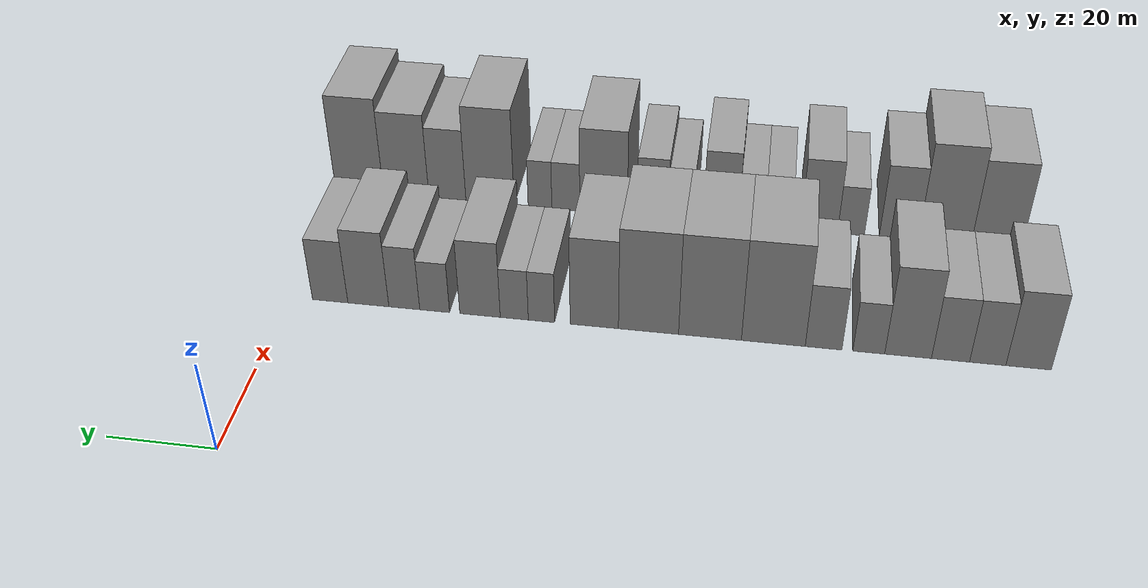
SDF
<sdf version="1.6">
 <world name="default">
  <model name="building_19">
   <static>1</static>
   <pose>50.0000 -140.0425 0 0.000000 0.000000 0.000000</pose>
   <link name="link">
    <pose>0 0 9.00 0 0 0</pose>
    <collision name="collision"><geometry><box><size>20.0000 8.1334 18.0000</size></box></geometry></collision>
    <visual name="visual">
     <cast_shadows>0</cast_shadows>
     <geometry><box><size>20.0000 8.1334 18.0000</size></box></geometry>
     <material>
      <script>
       <uri>model://grey_wall/materials/scripts</uri>
       <uri>model://grey_wall/materials/textures</uri>
       <name>vrc/grey_wall</name>
      </script>
     </material>
    </visual>
   </link>
  </model>
  <model name="building_20">
   <static>1</static>
   <pose>50.0000 -132.7113 0 0.000000 0.000000 0.000000</pose>
   <link name="link">
    <pose>0 0 7.50 0 0 0</pose>
    <collision name="collision"><geometry><box><size>20.0000 6.5290 15.0000</size></box></geometry></collision>
    <visual name="visual">
     <cast_shadows>0</cast_shadows>
     <geometry><box><size>20.0000 6.5290 15.0000</size></box></geometry>
     <material>
      <script>
       <uri>model://grey_wall/materials/scripts</uri>
       <uri>model://grey_wall/materials/textures</uri>
       <name>vrc/grey_wall</name>
      </script>
     </material>
    </visual>
   </link>
  </model>
  <model name="building_21">
   <static>1</static>
   <pose>50.0000 -125.9997 0 0.000000 0.000000 0.000000</pose>
   <link name="link">
    <pose>0 0 7.50 0 0 0</pose>
    <collision name="collision"><geometry><box><size>20.0000 6.8943 15.0000</size></box></geometry></collision>
    <visual name="visual">
     <cast_shadows>0</cast_shadows>
     <geometry><box><size>20.0000 6.8943 15.0000</size></box></geometry>
     <material>
      <script>
       <uri>model://grey_wall/materials/scripts</uri>
       <uri>model://grey_wall/materials/textures</uri>
       <name>vrc/grey_wall</name>
      </script>
     </material>
    </visual>
   </link>
  </model>
  <model name="building_22">
   <static>1</static>
   <pose>50.0000 -118.2893 0 0.000000 0.000000 0.000000</pose>
   <link name="link">
    <pose>0 0 10.50 0 0 0</pose>
    <collision name="collision"><geometry><box><size>20.0000 8.5265 21.0000</size></box></geometry></collision>
    <visual name="visual">
     <cast_shadows>0</cast_shadows>
     <geometry><box><size>20.0000 8.5265 21.0000</size></box></geometry>
     <material>
      <script>
       <uri>model://grey_wall/materials/scripts</uri>
       <uri>model://grey_wall/materials/textures</uri>
       <name>vrc/grey_wall</name>
      </script>
     </material>
    </visual>
   </link>
  </model>
  <model name="building_23">
   <static>1</static>
   <pose>50.0000 -111.1062 0 0.000000 0.000000 0.000000</pose>
   <link name="link">
    <pose>0 0 6.00 0 0 0</pose>
    <collision name="collision"><geometry><box><size>20.0000 5.8397 12.0000</size></box></geometry></collision>
    <visual name="visual">
     <cast_shadows>0</cast_shadows>
     <geometry><box><size>20.0000 5.8397 12.0000</size></box></geometry>
     <material>
      <script>
       <uri>model://grey_wall/materials/scripts</uri>
       <uri>model://grey_wall/materials/textures</uri>
       <name>vrc/grey_wall</name>
      </script>
     </material>
    </visual>
   </link>
  </model>
  <model name="building_24">
   <static>1</static>
   <pose>50.0000 -102.7975 0 0.000000 0.000000 0.000000</pose>
   <link name="link">
    <pose>0 0 7.50 0 0 0</pose>
    <collision name="collision"><geometry><box><size>20.0000 6.7777 15.0000</size></box></geometry></collision>
    <visual name="visual">
     <cast_shadows>0</cast_shadows>
     <geometry><box><size>20.0000 6.7777 15.0000</size></box></geometry>
     <material>
      <script>
       <uri>model://grey_wall/materials/scripts</uri>
       <uri>model://grey_wall/materials/textures</uri>
       <name>vrc/grey_wall</name>
      </script>
     </material>
    </visual>
   </link>
  </model>
  <model name="building_25">
   <static>1</static>
   <pose>50.0000 -93.4668 0 0.000000 0.000000 0.000000</pose>
   <link name="link">
    <pose>0 0 12.00 0 0 0</pose>
    <collision name="collision"><geometry><box><size>20.0000 11.8837 24.0000</size></box></geometry></collision>
    <visual name="visual">
     <cast_shadows>0</cast_shadows>
     <geometry><box><size>20.0000 11.8837 24.0000</size></box></geometry>
     <material>
      <script>
       <uri>model://grey_wall/materials/scripts</uri>
       <uri>model://grey_wall/materials/textures</uri>
       <name>vrc/grey_wall</name>
      </script>
     </material>
    </visual>
   </link>
  </model>
  <model name="building_26">
   <static>1</static>
   <pose>50.0000 -81.6182 0 0.000000 0.000000 0.000000</pose>
   <link name="link">
    <pose>0 0 12.00 0 0 0</pose>
    <collision name="collision"><geometry><box><size>20.0000 11.8136 24.0000</size></box></geometry></collision>
    <visual name="visual">
     <cast_shadows>0</cast_shadows>
     <geometry><box><size>20.0000 11.8136 24.0000</size></box></geometry>
     <material>
      <script>
       <uri>model://grey_wall/materials/scripts</uri>
       <uri>model://grey_wall/materials/textures</uri>
       <name>vrc/grey_wall</name>
      </script>
     </material>
    </visual>
   </link>
  </model>
  <model name="building_27">
   <static>1</static>
   <pose>50.0000 -70.0026 0 0.000000 0.000000 0.000000</pose>
   <link name="link">
    <pose>0 0 12.00 0 0 0</pose>
    <collision name="collision"><geometry><box><size>20.0000 11.4176 24.0000</size></box></geometry></collision>
    <visual name="visual">
     <cast_shadows>0</cast_shadows>
     <geometry><box><size>20.0000 11.4176 24.0000</size></box></geometry>
     <material>
      <script>
       <uri>model://grey_wall/materials/scripts</uri>
       <uri>model://grey_wall/materials/textures</uri>
       <name>vrc/grey_wall</name>
      </script>
     </material>
    </visual>
   </link>
  </model>
  <model name="building_28">
   <static>1</static>
   <pose>50.0000 -59.6757 0 0.000000 0.000000 0.000000</pose>
   <link name="link">
    <pose>0 0 10.50 0 0 0</pose>
    <collision name="collision"><geometry><box><size>20.0000 9.2361 21.0000</size></box></geometry></collision>
    <visual name="visual">
     <cast_shadows>0</cast_shadows>
     <geometry><box><size>20.0000 9.2361 21.0000</size></box></geometry>
     <material>
      <script>
       <uri>model://grey_wall/materials/scripts</uri>
       <uri>model://grey_wall/materials/textures</uri>
       <name>vrc/grey_wall</name>
      </script>
     </material>
    </visual>
   </link>
  </model>
  <model name="building_29">
   <static>1</static>
   <pose>50.0000 -49.5209 0 0.000000 0.000000 0.000000</pose>
   <link name="link">
    <pose>0 0 6.00 0 0 0</pose>
    <collision name="collision"><geometry><box><size>20.0000 5.0735 12.0000</size></box></geometry></collision>
    <visual name="visual">
     <cast_shadows>0</cast_shadows>
     <geometry><box><size>20.0000 5.0735 12.0000</size></box></geometry>
     <material>
      <script>
       <uri>model://grey_wall/materials/scripts</uri>
       <uri>model://grey_wall/materials/textures</uri>
       <name>vrc/grey_wall</name>
      </script>
     </material>
    </visual>
   </link>
  </model>
  <model name="building_30">
   <static>1</static>
   <pose>50.0000 -44.2629 0 0.000000 0.000000 0.000000</pose>
   <link name="link">
    <pose>0 0 6.00 0 0 0</pose>
    <collision name="collision"><geometry><box><size>20.0000 5.4425 12.0000</size></box></geometry></collision>
    <visual name="visual">
     <cast_shadows>0</cast_shadows>
     <geometry><box><size>20.0000 5.4425 12.0000</size></box></geometry>
     <material>
      <script>
       <uri>model://grey_wall/materials/scripts</uri>
       <uri>model://grey_wall/materials/textures</uri>
       <name>vrc/grey_wall</name>
      </script>
     </material>
    </visual>
   </link>
  </model>
  <model name="building_31">
   <static>1</static>
   <pose>50.0000 -37.5939 0 0.000000 0.000000 0.000000</pose>
   <link name="link">
    <pose>0 0 9.00 0 0 0</pose>
    <collision name="collision"><geometry><box><size>20.0000 7.8954 18.0000</size></box></geometry></collision>
    <visual name="visual">
     <cast_shadows>0</cast_shadows>
     <geometry><box><size>20.0000 7.8954 18.0000</size></box></geometry>
     <material>
      <script>
       <uri>model://grey_wall/materials/scripts</uri>
       <uri>model://grey_wall/materials/textures</uri>
       <name>vrc/grey_wall</name>
      </script>
     </material>
    </visual>
   </link>
  </model>
  <model name="building_32">
   <static>1</static>
   <pose>50.0000 -28.7165 0 0.000000 0.000000 0.000000</pose>
   <link name="link">
    <pose>0 0 6.00 0 0 0</pose>
    <collision name="collision"><geometry><box><size>20.0000 5.8594 12.0000</size></box></geometry></collision>
    <visual name="visual">
     <cast_shadows>0</cast_shadows>
     <geometry><box><size>20.0000 5.8594 12.0000</size></box></geometry>
     <material>
      <script>
       <uri>model://grey_wall/materials/scripts</uri>
       <uri>model://grey_wall/materials/textures</uri>
       <name>vrc/grey_wall</name>
      </script>
     </material>
    </visual>
   </link>
  </model>
  <model name="building_33">
   <static>1</static>
   <pose>50.0000 -22.7319 0 0.000000 0.000000 0.000000</pose>
   <link name="link">
    <pose>0 0 7.50 0 0 0</pose>
    <collision name="collision"><geometry><box><size>20.0000 6.1098 15.0000</size></box></geometry></collision>
    <visual name="visual">
     <cast_shadows>0</cast_shadows>
     <geometry><box><size>20.0000 6.1098 15.0000</size></box></geometry>
     <material>
      <script>
       <uri>model://grey_wall/materials/scripts</uri>
       <uri>model://grey_wall/materials/textures</uri>
       <name>vrc/grey_wall</name>
      </script>
     </material>
    </visual>
   </link>
  </model>
  <model name="building_34">
   <static>1</static>
   <pose>50.0000 -15.6095 0 0.000000 0.000000 0.000000</pose>
   <link name="link">
    <pose>0 0 9.00 0 0 0</pose>
    <collision name="collision"><geometry><box><size>20.0000 8.1350 18.0000</size></box></geometry></collision>
    <visual name="visual">
     <cast_shadows>0</cast_shadows>
     <geometry><box><size>20.0000 8.1350 18.0000</size></box></geometry>
     <material>
      <script>
       <uri>model://grey_wall/materials/scripts</uri>
       <uri>model://grey_wall/materials/textures</uri>
       <name>vrc/grey_wall</name>
      </script>
     </material>
    </visual>
   </link>
  </model>
  <model name="building_35">
   <static>1</static>
   <pose>50.0000 -7.9999 0 0.000000 0.000000 0.000000</pose>
   <link name="link">
    <pose>0 0 7.50 0 0 0</pose>
    <collision name="collision"><geometry><box><size>20.0000 7.0841 15.0000</size></box></geometry></collision>
    <visual name="visual">
     <cast_shadows>0</cast_shadows>
     <geometry><box><size>20.0000 7.0841 15.0000</size></box></geometry>
     <material>
      <script>
       <uri>model://grey_wall/materials/scripts</uri>
       <uri>model://grey_wall/materials/textures</uri>
       <name>vrc/grey_wall</name>
      </script>
     </material>
    </visual>
   </link>
  </model>
  <model name="building_87">
   <static>1</static>
   <pose>85.0000 -137.2307 0 0.000000 0.000000 0.000000</pose>
   <link name="link">
    <pose>0 0 10.50 0 0 0</pose>
    <collision name="collision"><geometry><box><size>20.0000 10.0769 21.0000</size></box></geometry></collision>
    <visual name="visual">
     <cast_shadows>0</cast_shadows>
     <geometry><box><size>20.0000 10.0769 21.0000</size></box></geometry>
     <material>
      <script>
       <uri>model://grey_wall/materials/scripts</uri>
       <uri>model://grey_wall/materials/textures</uri>
       <name>vrc/grey_wall</name>
      </script>
     </material>
    </visual>
   </link>
  </model>
  <model name="building_88">
   <static>1</static>
   <pose>85.0000 -126.8815 0 0.000000 0.000000 0.000000</pose>
   <link name="link">
    <pose>0 0 12.00 0 0 0</pose>
    <collision name="collision"><geometry><box><size>20.0000 10.6216 24.0000</size></box></geometry></collision>
    <visual name="visual">
     <cast_shadows>0</cast_shadows>
     <geometry><box><size>20.0000 10.6216 24.0000</size></box></geometry>
     <material>
      <script>
       <uri>model://grey_wall/materials/scripts</uri>
       <uri>model://grey_wall/materials/textures</uri>
       <name>vrc/grey_wall</name>
      </script>
     </material>
    </visual>
   </link>
  </model>
  <model name="building_89">
   <static>1</static>
   <pose>85.0000 -117.6487 0 0.000000 0.000000 0.000000</pose>
   <link name="link">
    <pose>0 0 9.00 0 0 0</pose>
    <collision name="collision"><geometry><box><size>20.0000 7.8439 18.0000</size></box></geometry></collision>
    <visual name="visual">
     <cast_shadows>0</cast_shadows>
     <geometry><box><size>20.0000 7.8439 18.0000</size></box></geometry>
     <material>
      <script>
       <uri>model://grey_wall/materials/scripts</uri>
       <uri>model://grey_wall/materials/textures</uri>
       <name>vrc/grey_wall</name>
      </script>
     </material>
    </visual>
   </link>
  </model>
  <model name="building_90">
   <static>1</static>
   <pose>85.0000 -107.9802 0 0.000000 0.000000 0.000000</pose>
   <link name="link">
    <pose>0 0 6.00 0 0 0</pose>
    <collision name="collision"><geometry><box><size>20.0000 5.4931 12.0000</size></box></geometry></collision>
    <visual name="visual">
     <cast_shadows>0</cast_shadows>
     <geometry><box><size>20.0000 5.4931 12.0000</size></box></geometry>
     <material>
      <script>
       <uri>model://grey_wall/materials/scripts</uri>
       <uri>model://grey_wall/materials/textures</uri>
       <name>vrc/grey_wall</name>
      </script>
     </material>
    </visual>
   </link>
  </model>
  <model name="building_91">
   <static>1</static>
   <pose>85.0000 -101.4281 0 0.000000 0.000000 0.000000</pose>
   <link name="link">
    <pose>0 0 9.00 0 0 0</pose>
    <collision name="collision"><geometry><box><size>20.0000 7.6112 18.0000</size></box></geometry></collision>
    <visual name="visual">
     <cast_shadows>0</cast_shadows>
     <geometry><box><size>20.0000 7.6112 18.0000</size></box></geometry>
     <material>
      <script>
       <uri>model://grey_wall/materials/scripts</uri>
       <uri>model://grey_wall/materials/textures</uri>
       <name>vrc/grey_wall</name>
      </script>
     </material>
    </visual>
   </link>
  </model>
  <model name="building_92">
   <static>1</static>
   <pose>85.0000 -92.8649 0 0.000000 0.000000 0.000000</pose>
   <link name="link">
    <pose>0 0 6.00 0 0 0</pose>
    <collision name="collision"><geometry><box><size>20.0000 5.5152 12.0000</size></box></geometry></collision>
    <visual name="visual">
     <cast_shadows>0</cast_shadows>
     <geometry><box><size>20.0000 5.5152 12.0000</size></box></geometry>
     <material>
      <script>
       <uri>model://grey_wall/materials/scripts</uri>
       <uri>model://grey_wall/materials/textures</uri>
       <name>vrc/grey_wall</name>
      </script>
     </material>
    </visual>
   </link>
  </model>
  <model name="building_93">
   <static>1</static>
   <pose>85.0000 -87.4809 0 0.000000 0.000000 0.000000</pose>
   <link name="link">
    <pose>0 0 6.00 0 0 0</pose>
    <collision name="collision"><geometry><box><size>20.0000 5.2529 12.0000</size></box></geometry></collision>
    <visual name="visual">
     <cast_shadows>0</cast_shadows>
     <geometry><box><size>20.0000 5.2529 12.0000</size></box></geometry>
     <material>
      <script>
       <uri>model://grey_wall/materials/scripts</uri>
       <uri>model://grey_wall/materials/textures</uri>
       <name>vrc/grey_wall</name>
      </script>
     </material>
    </visual>
   </link>
  </model>
  <model name="building_94">
   <static>1</static>
   <pose>85.0000 -81.1944 0 0.000000 0.000000 0.000000</pose>
   <link name="link">
    <pose>0 0 9.00 0 0 0</pose>
    <collision name="collision"><geometry><box><size>20.0000 7.3200 18.0000</size></box></geometry></collision>
    <visual name="visual">
     <cast_shadows>0</cast_shadows>
     <geometry><box><size>20.0000 7.3200 18.0000</size></box></geometry>
     <material>
      <script>
       <uri>model://grey_wall/materials/scripts</uri>
       <uri>model://grey_wall/materials/textures</uri>
       <name>vrc/grey_wall</name>
      </script>
     </material>
    </visual>
   </link>
  </model>
  <model name="building_95">
   <static>1</static>
   <pose>85.0000 -72.8928 0 0.000000 0.000000 0.000000</pose>
   <link name="link">
    <pose>0 0 6.00 0 0 0</pose>
    <collision name="collision"><geometry><box><size>20.0000 5.2834 12.0000</size></box></geometry></collision>
    <visual name="visual">
     <cast_shadows>0</cast_shadows>
     <geometry><box><size>20.0000 5.2834 12.0000</size></box></geometry>
     <material>
      <script>
       <uri>model://grey_wall/materials/scripts</uri>
       <uri>model://grey_wall/materials/textures</uri>
       <name>vrc/grey_wall</name>
      </script>
     </material>
    </visual>
   </link>
  </model>
  <model name="building_96">
   <static>1</static>
   <pose>85.0000 -66.9604 0 0.000000 0.000000 0.000000</pose>
   <link name="link">
    <pose>0 0 7.50 0 0 0</pose>
    <collision name="collision"><geometry><box><size>20.0000 6.5813 15.0000</size></box></geometry></collision>
    <visual name="visual">
     <cast_shadows>0</cast_shadows>
     <geometry><box><size>20.0000 6.5813 15.0000</size></box></geometry>
     <material>
      <script>
       <uri>model://grey_wall/materials/scripts</uri>
       <uri>model://grey_wall/materials/textures</uri>
       <name>vrc/grey_wall</name>
      </script>
     </material>
    </visual>
   </link>
  </model>
  <model name="building_97">
   <static>1</static>
   <pose>85.0000 -56.6427 0 0.000000 0.000000 0.000000</pose>
   <link name="link">
    <pose>0 0 10.50 0 0 0</pose>
    <collision name="collision"><geometry><box><size>20.0000 10.0540 21.0000</size></box></geometry></collision>
    <visual name="visual">
     <cast_shadows>0</cast_shadows>
     <geometry><box><size>20.0000 10.0540 21.0000</size></box></geometry>
     <material>
      <script>
       <uri>model://grey_wall/materials/scripts</uri>
       <uri>model://grey_wall/materials/textures</uri>
       <name>vrc/grey_wall</name>
      </script>
     </material>
    </visual>
   </link>
  </model>
  <model name="building_98">
   <static>1</static>
   <pose>85.0000 -48.6433 0 0.000000 0.000000 0.000000</pose>
   <link name="link">
    <pose>0 0 6.00 0 0 0</pose>
    <collision name="collision"><geometry><box><size>20.0000 5.9448 12.0000</size></box></geometry></collision>
    <visual name="visual">
     <cast_shadows>0</cast_shadows>
     <geometry><box><size>20.0000 5.9448 12.0000</size></box></geometry>
     <material>
      <script>
       <uri>model://grey_wall/materials/scripts</uri>
       <uri>model://grey_wall/materials/textures</uri>
       <name>vrc/grey_wall</name>
      </script>
     </material>
    </visual>
   </link>
  </model>
  <model name="building_99">
   <static>1</static>
   <pose>85.0000 -43.1424 0 0.000000 0.000000 0.000000</pose>
   <link name="link">
    <pose>0 0 6.00 0 0 0</pose>
    <collision name="collision"><geometry><box><size>20.0000 5.0570 12.0000</size></box></geometry></collision>
    <visual name="visual">
     <cast_shadows>0</cast_shadows>
     <geometry><box><size>20.0000 5.0570 12.0000</size></box></geometry>
     <material>
      <script>
       <uri>model://grey_wall/materials/scripts</uri>
       <uri>model://grey_wall/materials/textures</uri>
       <name>vrc/grey_wall</name>
      </script>
     </material>
    </visual>
   </link>
  </model>
  <model name="building_100">
   <static>1</static>
   <pose>85.0000 -32.4140 0 0.000000 0.000000 0.000000</pose>
   <link name="link">
    <pose>0 0 12.00 0 0 0</pose>
    <collision name="collision"><geometry><box><size>20.0000 10.3999 24.0000</size></box></geometry></collision>
    <visual name="visual">
     <cast_shadows>0</cast_shadows>
     <geometry><box><size>20.0000 10.3999 24.0000</size></box></geometry>
     <material>
      <script>
       <uri>model://grey_wall/materials/scripts</uri>
       <uri>model://grey_wall/materials/textures</uri>
       <name>vrc/grey_wall</name>
      </script>
     </material>
    </visual>
   </link>
  </model>
  <model name="building_101">
   <static>1</static>
   <pose>85.0000 -23.2079 0 0.000000 0.000000 0.000000</pose>
   <link name="link">
    <pose>0 0 9.00 0 0 0</pose>
    <collision name="collision"><geometry><box><size>20.0000 8.0123 18.0000</size></box></geometry></collision>
    <visual name="visual">
     <cast_shadows>0</cast_shadows>
     <geometry><box><size>20.0000 8.0123 18.0000</size></box></geometry>
     <material>
      <script>
       <uri>model://grey_wall/materials/scripts</uri>
       <uri>model://grey_wall/materials/textures</uri>
       <name>vrc/grey_wall</name>
      </script>
     </material>
    </visual>
   </link>
  </model>
  <model name="building_102">
   <static>1</static>
   <pose>85.0000 -14.2517 0 0.000000 0.000000 0.000000</pose>
   <link name="link">
    <pose>0 0 10.50 0 0 0</pose>
    <collision name="collision"><geometry><box><size>20.0000 9.9002 21.0000</size></box></geometry></collision>
    <visual name="visual">
     <cast_shadows>0</cast_shadows>
     <geometry><box><size>20.0000 9.9002 21.0000</size></box></geometry>
     <material>
      <script>
       <uri>model://grey_wall/materials/scripts</uri>
       <uri>model://grey_wall/materials/textures</uri>
       <name>vrc/grey_wall</name>
      </script>
     </material>
    </visual>
   </link>
  </model>
  <model name="building_103">
   <static>1</static>
   <pose>85.0000 -4.0149 0 0.000000 0.000000 0.000000</pose>
   <link name="link">
    <pose>0 0 12.00 0 0 0</pose>
    <collision name="collision"><geometry><box><size>20.0000 10.5733 24.0000</size></box></geometry></collision>
    <visual name="visual">
     <cast_shadows>0</cast_shadows>
     <geometry><box><size>20.0000 10.5733 24.0000</size></box></geometry>
     <material>
      <script>
       <uri>model://grey_wall/materials/scripts</uri>
       <uri>model://grey_wall/materials/textures</uri>
       <name>vrc/grey_wall</name>
      </script>
     </material>
    </visual>
   </link>
  </model>
 </world>
</sdf>
